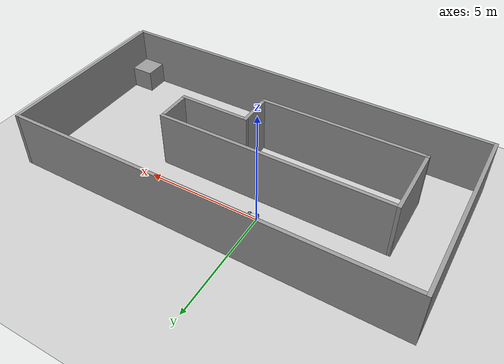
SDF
<sdf version="1.7">
 <world name="default">
  <light name="sun" type="directional">
   <pose>0 0 10 0 -0 0</pose>
   <diffuse>0.8 0.8 0.8 1</diffuse>
   <specular>0.2 0.2 0.2 1</specular>
   <attenuation>
    <range>1000</range>
    <constant>0.9</constant>
    <linear>0.01</linear>
    <quadratic>0.001</quadratic>
   </attenuation>
   <direction>-0.5 0.1 -0.9</direction>
   <spot><inner_angle>0</inner_angle><outer_angle>0</outer_angle><falloff>0</falloff></spot>
  </light>
  <model name="ground_plane">
   <static>1</static>
   <link name="link">
    <collision name="collision">
     <geometry><plane><normal>0 0 1</normal><size>100 100</size></plane></geometry>
     <surface><friction><ode><mu>100</mu><mu2>50</mu2></ode></friction></surface>
    </collision>
    <visual name="visual">
     <cast_shadows>0</cast_shadows>
     <geometry><plane><normal>0 0 1</normal><size>100 100</size></plane></geometry>
     <material>
      <script><uri>file://media/materials/scripts/gazebo.material</uri><name>Gazebo/Grey</name></script>
     </material>
    </visual>
   </link>
  </model>
  <gravity>0 0 -9.8</gravity>
  <magnetic_field>6e-06 2.3e-05 -4.2e-05</magnetic_field>
  <atmosphere type="adiabatic"/>
  <physics type="ode">
   <max_step_size>0.001</max_step_size>
   <real_time_factor>1</real_time_factor>
   <real_time_update_rate>1000</real_time_update_rate>
  </physics>
  <scene><ambient>0.4 0.4 0.4 1</ambient><background>0.7 0.7 0.7 1</background><shadows>1</shadows></scene>
  <audio><device>default</device></audio>
  <spherical_coordinates>
   <surface_model>EARTH_WGS84</surface_model>
   <latitude_deg>0</latitude_deg>
   <longitude_deg>0</longitude_deg>
   <elevation>0</elevation>
   <heading_deg>0</heading_deg>
  </spherical_coordinates>
  <model name="my_rover">
   <link name="base_footprint">
    <inertial>
     <pose>0.001088 0 0.047186 0 -0 0</pose>
     <mass>10.11</mass>
     <inertia>
      <ixx>0.0578789</ixx>
      <ixy>0</ixy>
      <ixz>-0.00218595</ixz>
      <iyy>0.0995919</iyy>
      <iyz>0</iyz>
      <izz>0.0938779</izz>
     </inertia>
    </inertial>
    <collision name="base_footprint_fixed_joint_lump__base_link_collision">
     <pose>0 0 0.09 0 -0 0</pose>
     <geometry><box><size>0.4 0.25 0.13</size></box></geometry>
    </collision>
    <visual name="base_footprint_visual"><geometry><box><size>0.001 0.001 0.001</size></box></geometry></visual>
    <visual name="base_footprint_fixed_joint_lump__base_link_visual_1">
     <pose>0 0 0.09 0 -0 0</pose>
     <geometry><box><size>0.4 0.25 0.13</size></box></geometry>
     <material>
      <script><name>Gazebo/White</name><uri>file://media/materials/scripts/gazebo.material</uri></script>
     </material>
    </visual>
    <visual name="base_footprint_fixed_joint_lump__laserholder_link_visual_2">
     <pose>0.1 0 0.205 0 -0 0</pose>
     <geometry><cylinder><length>0.1</length><radius>0.02</radius></cylinder></geometry>
    </visual>
    <visual name="base_footprint_fixed_joint_lump__scan_link_visual_3">
     <pose>0.1 0 0.255 0 -0 0</pose>
     <geometry><cylinder><length>0.04</length><radius>0.04</radius></cylinder></geometry>
    </visual>
    <sensor name="lidar" type="ray">
     <always_on>1</always_on>
     <visualize>1</visualize>
     <update_rate>10</update_rate>
     <ray>
      <scan>
       <horizontal>
        <samples>360</samples>
        <resolution>1</resolution>
        <min_angle>0</min_angle>
        <max_angle>6.28</max_angle>
       </horizontal>
       <vertical><samples>1</samples><min_angle>0</min_angle><max_angle>0</max_angle></vertical>
      </scan>
      <range><min>0.12</min><max>10</max><resolution>0.02</resolution></range>
      <noise><type>gaussian</type><mean>0</mean><stddev>0.01</stddev></noise>
     </ray>
     <plugin name="scan" filename="libgazebo_ros_ray_sensor.so">
      <ros><remapping>~/out:=scan</remapping></ros>
      <output_type>sensor_msgs/LaserScan</output_type>
      <frame_name>scan_link</frame_name>
     </plugin>
     <pose>0.1 0 0.255 0 -0 0</pose>
    </sensor>
   </link>
   <joint name="joint_FL" type="revolute">
    <pose relative_to="base_footprint">0.15 0.16 0.07 -1.5708 0 0</pose>
    <parent>base_footprint</parent>
    <child>wheel_FL</child>
    <axis>
     <xyz>0 0 1</xyz>
     <limit><lower>-1e+16</lower><upper>1e+16</upper></limit>
     <dynamics><spring_reference>0</spring_reference><spring_stiffness>0</spring_stiffness></dynamics>
    </axis>
   </joint>
   <link name="wheel_FL">
    <pose relative_to="joint_FL">0 0 0 0 -0 0</pose>
    <inertial>
     <mass>0.5</mass>
     <inertia>
      <ixx>0.00111667</ixx>
      <ixy>0</ixy>
      <ixz>0</ixz>
      <iyy>0.00111667</iyy>
      <iyz>0</iyz>
      <izz>0.002025</izz>
     </inertia>
    </inertial>
    <collision name="wheel_FL_collision">
     <geometry><cylinder><length>0.05</length><radius>0.09</radius></cylinder></geometry>
     <surface><friction><ode><mu>0.001</mu><mu2>0.001</mu2></ode></friction></surface>
    </collision>
    <visual name="wheel_FL_visual">
     <geometry><cylinder><length>0.05</length><radius>0.09</radius></cylinder></geometry>
     <material>
      <script><name>Gazebo/Black</name><uri>file://media/materials/scripts/gazebo.material</uri></script>
     </material>
    </visual>
   </link>
   <joint name="joint_FR" type="revolute">
    <pose relative_to="base_footprint">0.15 -0.16 0.07 -1.5708 0 0</pose>
    <parent>base_footprint</parent>
    <child>wheel_FR</child>
    <axis>
     <xyz>0 0 1</xyz>
     <limit><lower>-1e+16</lower><upper>1e+16</upper></limit>
     <dynamics><spring_reference>0</spring_reference><spring_stiffness>0</spring_stiffness></dynamics>
    </axis>
   </joint>
   <link name="wheel_FR">
    <pose relative_to="joint_FR">0 0 0 0 -0 0</pose>
    <inertial>
     <mass>0.5</mass>
     <inertia>
      <ixx>0.00111667</ixx>
      <ixy>0</ixy>
      <ixz>0</ixz>
      <iyy>0.00111667</iyy>
      <iyz>0</iyz>
      <izz>0.002025</izz>
     </inertia>
    </inertial>
    <collision name="wheel_FR_collision">
     <geometry><cylinder><length>0.05</length><radius>0.09</radius></cylinder></geometry>
     <surface><friction><ode><mu>0.001</mu><mu2>0.001</mu2></ode></friction></surface>
    </collision>
    <visual name="wheel_FR_visual">
     <geometry><cylinder><length>0.05</length><radius>0.09</radius></cylinder></geometry>
     <material>
      <script><name>Gazebo/Black</name><uri>file://media/materials/scripts/gazebo.material</uri></script>
     </material>
    </visual>
   </link>
   <joint name="joint_RL" type="revolute">
    <pose relative_to="base_footprint">-0.15 0.16 0.07 -1.5708 0 0</pose>
    <parent>base_footprint</parent>
    <child>wheel_RL</child>
    <axis>
     <xyz>0 0 1</xyz>
     <limit><lower>-1e+16</lower><upper>1e+16</upper></limit>
     <dynamics><spring_reference>0</spring_reference><spring_stiffness>0</spring_stiffness></dynamics>
    </axis>
   </joint>
   <link name="wheel_RL">
    <pose relative_to="joint_RL">0 0 0 0 -0 0</pose>
    <inertial>
     <mass>0.5</mass>
     <inertia>
      <ixx>0.00111667</ixx>
      <ixy>0</ixy>
      <ixz>0</ixz>
      <iyy>0.00111667</iyy>
      <iyz>0</iyz>
      <izz>0.002025</izz>
     </inertia>
    </inertial>
    <collision name="wheel_RL_collision">
     <geometry><cylinder><length>0.05</length><radius>0.09</radius></cylinder></geometry>
    </collision>
    <visual name="wheel_RL_visual">
     <geometry><cylinder><length>0.05</length><radius>0.09</radius></cylinder></geometry>
     <material>
      <script><name>Gazebo/Black</name><uri>file://media/materials/scripts/gazebo.material</uri></script>
     </material>
    </visual>
   </link>
   <joint name="joint_RR" type="revolute">
    <pose relative_to="base_footprint">-0.15 -0.16 0.07 -1.5708 0 0</pose>
    <parent>base_footprint</parent>
    <child>wheel_RR</child>
    <axis>
     <xyz>0 0 1</xyz>
     <limit><lower>-1e+16</lower><upper>1e+16</upper></limit>
     <dynamics><spring_reference>0</spring_reference><spring_stiffness>0</spring_stiffness></dynamics>
    </axis>
   </joint>
   <link name="wheel_RR">
    <pose relative_to="joint_RR">0 0 0 0 -0 0</pose>
    <inertial>
     <mass>0.5</mass>
     <inertia>
      <ixx>0.00111667</ixx>
      <ixy>0</ixy>
      <ixz>0</ixz>
      <iyy>0.00111667</iyy>
      <iyz>0</iyz>
      <izz>0.002025</izz>
     </inertia>
    </inertial>
    <collision name="wheel_RR_collision">
     <geometry><cylinder><length>0.05</length><radius>0.09</radius></cylinder></geometry>
    </collision>
    <visual name="wheel_RR_visual">
     <geometry><cylinder><length>0.05</length><radius>0.09</radius></cylinder></geometry>
     <material>
      <script><name>Gazebo/Black</name><uri>file://media/materials/scripts/gazebo.material</uri></script>
     </material>
    </visual>
   </link>
   <plugin name="diff_drive" filename="libgazebo_ros_diff_drive.so">
    <ros><namespace>/</namespace><remapping>cmd_vel:=cmd_vel</remapping><remapping>odom:=odom</remapping></ros>
    <left_joint>joint_RL</left_joint>
    <right_joint>joint_RR</right_joint>
    <wheel_separation>0.32</wheel_separation>
    <wheel_diameter>0.18</wheel_diameter>
    <max_wheel_torque>200</max_wheel_torque>
    <max_wheel_acceleration>5.0</max_wheel_acceleration>
    <publish_odom>1</publish_odom>
    <publish_odom_tf>1</publish_odom_tf>
    <publish_wheel_tf>1</publish_wheel_tf>
    <odometry_frame>odom</odometry_frame>
    <robot_base_frame>base_footprint</robot_base_frame>
   </plugin>
   <static>0</static>
   <plugin name="joint_state_publisher" filename="libgazebo_ros_joint_state_publisher.so">
    <ros><remapping>~/out:=joint_states</remapping></ros>
    <update_rate>30</update_rate>
    <joint_name>joint_FL</joint_name>
    <joint_name>joint_FR</joint_name>
    <joint_name>joint_RL</joint_name>
    <joint_name>joint_RR</joint_name>
   </plugin>
   <pose>0.179345 0.041436 0.019995 -0 -3.1e-05 0.184574</pose>
  </model>
  <model name="Untitled">
   <pose>1.5 -2 0 0 -0 0</pose>
   <link name="Wall_0">
    <collision name="Wall_0_Collision">
     <geometry><box><size>10.15 0.15 2.5</size></box></geometry>
     <pose>0 0 1.25 0 -0 0</pose>
    </collision>
    <visual name="Wall_0_Visual">
     <pose>0 0 1.25 0 -0 0</pose>
     <geometry><box><size>10.15 0.15 2.5</size></box></geometry>
     <material>
      <script><uri>file://media/materials/scripts/gazebo.material</uri><name>Gazebo/Grey</name></script>
      <ambient>1 1 1 1</ambient>
     </material>
     <meta><layer>0</layer></meta>
    </visual>
    <pose>-1.5 1 0 0 -0 0</pose>
   </link>
   <link name="Wall_10">
    <collision name="Wall_10_Collision">
     <geometry><box><size>8.15 0.15 2.5</size></box></geometry>
     <pose>0 0 1.25 0 -0 0</pose>
    </collision>
    <visual name="Wall_10_Visual">
     <pose>0 0 1.25 0 -0 0</pose>
     <geometry><box><size>8.15 0.15 2.5</size></box></geometry>
     <material>
      <script><uri>file://media/materials/scripts/gazebo.material</uri><name>Gazebo/Grey</name></script>
      <ambient>1 1 1 1</ambient>
     </material>
     <meta><layer>0</layer></meta>
    </visual>
    <pose>8.5 0 0 0 -0 1.5708</pose>
   </link>
   <link name="Wall_11">
    <collision name="Wall_11_Collision">
     <geometry><box><size>17.15 0.15 2.5</size></box></geometry>
     <pose>0 0 1.25 0 -0 0</pose>
    </collision>
    <visual name="Wall_11_Visual">
     <pose>0 0 1.25 0 -0 0</pose>
     <geometry><box><size>17.15 0.15 2.5</size></box></geometry>
     <material>
      <script><uri>file://media/materials/scripts/gazebo.material</uri><name>Gazebo/Grey</name></script>
      <ambient>1 1 1 1</ambient>
     </material>
     <meta><layer>0</layer></meta>
    </visual>
    <pose>-0 4 0 0 -0 3.14159</pose>
   </link>
   <link name="Wall_2">
    <collision name="Wall_2_Collision">
     <geometry><box><size>1.65 0.15 2.5</size></box></geometry>
     <pose>0 0 1.25 0 -0 0</pose>
    </collision>
    <visual name="Wall_2_Visual">
     <pose>0 0 1.25 0 -0 0</pose>
     <geometry><box><size>1.65 0.15 2.5</size></box></geometry>
     <material>
      <script><uri>file://media/materials/scripts/gazebo.material</uri><name>Gazebo/Grey</name></script>
      <ambient>1 1 1 1</ambient>
     </material>
     <meta><layer>0</layer></meta>
    </visual>
    <pose>3.5 0.25 0 0 -0 -1.5708</pose>
   </link>
   <link name="Wall_3">
    <collision name="Wall_3_Collision">
     <geometry><box><size>3.15 0.15 2.5</size></box></geometry>
     <pose>0 0 1.25 0 -0 0</pose>
    </collision>
    <visual name="Wall_3_Visual">
     <pose>0 0 1.25 0 -0 0</pose>
     <geometry><box><size>3.15 0.15 2.5</size></box></geometry>
     <material>
      <script><uri>file://media/materials/scripts/gazebo.material</uri><name>Gazebo/Grey</name></script>
      <ambient>1 1 1 1</ambient>
     </material>
     <meta><layer>0</layer></meta>
    </visual>
    <pose>2 -0.5 0 0 -0 3.14159</pose>
   </link>
   <link name="Wall_4">
    <collision name="Wall_4_Collision">
     <geometry><box><size>1.65 0.15 2.5</size></box></geometry>
     <pose>0 0 1.25 0 -0 0</pose>
    </collision>
    <visual name="Wall_4_Visual">
     <pose>0 0 1.25 0 -0 0</pose>
     <geometry><box><size>1.65 0.15 2.5</size></box></geometry>
     <material>
      <script><uri>file://media/materials/scripts/gazebo.material</uri><name>Gazebo/Grey</name></script>
      <ambient>1 1 1 1</ambient>
     </material>
     <meta><layer>0</layer></meta>
    </visual>
    <pose>0.5 -1.25 0 0 -0 -1.5708</pose>
   </link>
   <link name="Wall_5">
    <collision name="Wall_5_Collision">
     <geometry><box><size>7.15 0.15 2.5</size></box></geometry>
     <pose>0 0 1.25 0 -0 0</pose>
    </collision>
    <visual name="Wall_5_Visual">
     <pose>0 0 1.25 0 -0 0</pose>
     <geometry><box><size>7.15 0.15 2.5</size></box></geometry>
     <material>
      <script><uri>file://media/materials/scripts/gazebo.material</uri><name>Gazebo/Grey</name></script>
      <ambient>1 1 1 1</ambient>
     </material>
     <meta><layer>0</layer></meta>
    </visual>
    <pose>-3 -2 0 0 -0 3.14159</pose>
   </link>
   <link name="Wall_6">
    <collision name="Wall_6_Collision">
     <geometry><box><size>3.15 0.15 2.5</size></box></geometry>
     <pose>0 0 1.25 0 -0 0</pose>
    </collision>
    <visual name="Wall_6_Visual">
     <pose>0 0 1.25 0 -0 0</pose>
     <geometry><box><size>3.15 0.15 2.5</size></box></geometry>
     <material>
      <script><uri>file://media/materials/scripts/gazebo.material</uri><name>Gazebo/Grey</name></script>
      <ambient>1 1 1 1</ambient>
     </material>
     <meta><layer>0</layer></meta>
    </visual>
    <pose>-6.5 -0.5 0 0 -0 1.5708</pose>
   </link>
   <link name="Wall_8">
    <collision name="Wall_8_Collision">
     <geometry><box><size>8.15 0.15 2.5</size></box></geometry>
     <pose>0 0 1.25 0 -0 0</pose>
    </collision>
    <visual name="Wall_8_Visual">
     <pose>0 0 1.25 0 -0 0</pose>
     <geometry><box><size>8.15 0.15 2.5</size></box></geometry>
     <material>
      <script><uri>file://media/materials/scripts/gazebo.material</uri><name>Gazebo/Grey</name></script>
      <ambient>1 1 1 1</ambient>
     </material>
     <meta><layer>0</layer></meta>
    </visual>
    <pose>-8.5 0 0 0 -0 -1.5708</pose>
   </link>
   <link name="Wall_9">
    <collision name="Wall_9_Collision">
     <geometry><box><size>17.15 0.15 2.5</size></box></geometry>
     <pose>0 0 1.25 0 -0 0</pose>
    </collision>
    <visual name="Wall_9_Visual">
     <pose>0 0 1.25 0 -0 0</pose>
     <geometry><box><size>17.15 0.15 2.5</size></box></geometry>
     <material>
      <script><uri>file://media/materials/scripts/gazebo.material</uri><name>Gazebo/Grey</name></script>
      <ambient>1 1 1 1</ambient>
     </material>
     <meta><layer>0</layer></meta>
    </visual>
    <pose>-0 -4 0 0 -0 0</pose>
   </link>
   <static>1</static>
  </model>
  <model name="unit_box">
   <pose>9.42501 -5.425 0.5 0 0 -3e-06</pose>
   <link name="link">
    <inertial>
     <mass>1</mass>
     <inertia>
      <ixx>0.166667</ixx>
      <ixy>0</ixy>
      <ixz>0</ixz>
      <iyy>0.166667</iyy>
      <iyz>0</iyz>
      <izz>0.166667</izz>
     </inertia>
    </inertial>
    <collision name="collision"><geometry><box><size>1 1 1</size></box></geometry></collision>
    <visual name="visual">
     <geometry><box><size>1 1 1</size></box></geometry>
     <material>
      <script><name>Gazebo/Grey</name><uri>file://media/materials/scripts/gazebo.material</uri></script>
     </material>
    </visual>
   </link>
  </model>
 </world>
</sdf>
